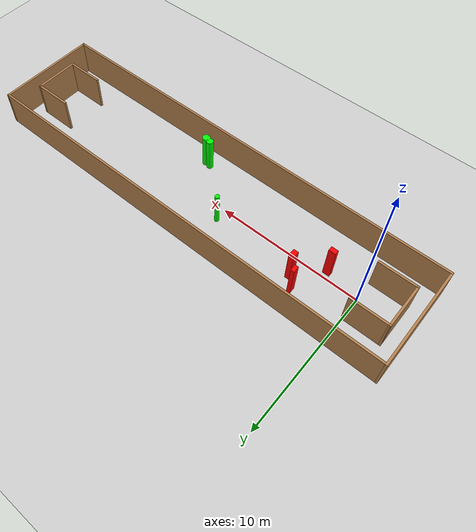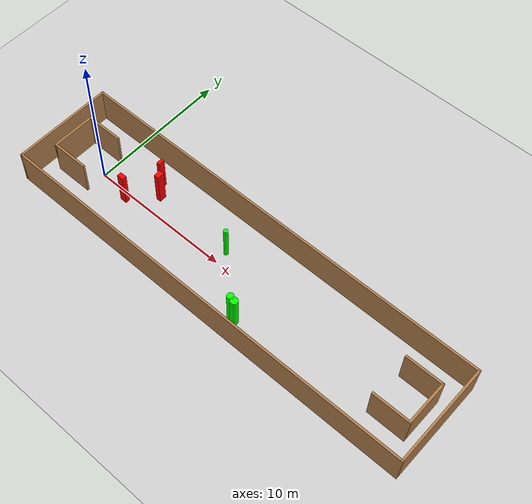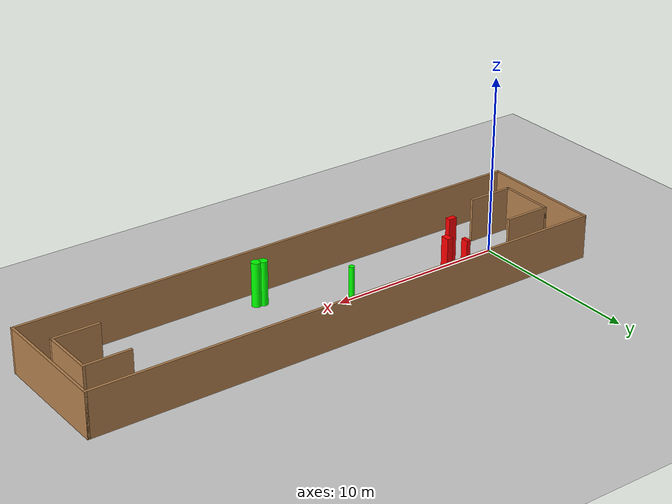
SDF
<sdf version="1.7">
 <world name="default">
  <light name="sun" type="directional">
   <pose>0 0 10 0 -0 0</pose>
   <diffuse>0.8 0.8 0.8 1</diffuse>
   <specular>0.2 0.2 0.2 1</specular>
   <attenuation>
    <range>1000</range>
    <constant>0.9</constant>
    <linear>0.01</linear>
    <quadratic>0.001</quadratic>
   </attenuation>
   <direction>-0.5 0.1 -0.9</direction>
   <spot><inner_angle>0</inner_angle><outer_angle>0</outer_angle><falloff>0</falloff></spot>
  </light>
  <model name="ground_plane">
   <static>1</static>
   <link name="link">
    <collision name="collision">
     <geometry><plane><normal>0 0 1</normal><size>100 100</size></plane></geometry>
     <surface>
      <contact><collide_bitmask>65535</collide_bitmask></contact>
      <friction><ode><mu>100</mu><mu2>50</mu2></ode></friction>
     </surface>
    </collision>
    <visual name="visual">
     <cast_shadows>0</cast_shadows>
     <geometry><plane><normal>0 0 1</normal><size>100 100</size></plane></geometry>
     <material>
      <script><uri>file://media/materials/scripts/gazebo.material</uri><name>Gazebo/Grey</name></script>
     </material>
    </visual>
   </link>
  </model>
  <gravity>0 0 -9.8</gravity>
  <magnetic_field>6e-06 2.3e-05 -4.2e-05</magnetic_field>
  <atmosphere type="adiabatic"/>
  <physics type="ode">
   <max_step_size>0.001</max_step_size>
   <real_time_factor>1</real_time_factor>
   <real_time_update_rate>1000</real_time_update_rate>
  </physics>
  <scene><ambient>0.4 0.4 0.4 1</ambient><background>0.7 0.7 0.7 1</background><shadows>1</shadows></scene>
  <spherical_coordinates>
   <surface_model>EARTH_WGS84</surface_model>
   <latitude_deg>0</latitude_deg>
   <longitude_deg>0</longitude_deg>
   <elevation>0</elevation>
   <heading_deg>0</heading_deg>
  </spherical_coordinates>
  <model name="my_base_walls">
   <link name="Wall_0">
    <collision name="Wall_0_Collision">
     <geometry><box><size>7.15 0.15 2.5</size></box></geometry>
     <pose>0 0 1.25 0 -0 0</pose>
    </collision>
    <visual name="Wall_0_Visual">
     <pose>0 0 1.25 0 -0 0</pose>
     <geometry><box><size>7.15 0.15 2.5</size></box></geometry>
     <material>
      <script><uri>file://media/materials/scripts/gazebo.material</uri><name>Gazebo/Wood</name></script>
      <ambient>1 1 1 1</ambient>
     </material>
     <meta><layer>0</layer></meta>
    </visual>
    <pose>-15 0 0 0 -0 1.5708</pose>
   </link>
   <link name="Wall_10">
    <collision name="Wall_10_Collision">
     <geometry><box><size>2.65 0.15 2.5</size></box></geometry>
     <pose>0 0 1.25 0 -0 0</pose>
    </collision>
    <visual name="Wall_10_Visual">
     <pose>0 0 1.25 0 -0 0</pose>
     <geometry><box><size>2.65 0.15 2.5</size></box></geometry>
     <material>
      <script><uri>file://media/materials/scripts/gazebo.material</uri><name>Gazebo/Wood</name></script>
      <ambient>1 1 1 1</ambient>
     </material>
     <meta><layer>0</layer></meta>
    </visual>
    <pose>-12.75 -1.5 0 0 -0 0</pose>
   </link>
   <link name="Wall_12">
    <collision name="Wall_12_Collision">
     <geometry><box><size>2.65 0.15 2.5</size></box></geometry>
     <pose>0 0 1.25 0 -0 0</pose>
    </collision>
    <visual name="Wall_12_Visual">
     <pose>0 0 1.25 0 -0 0</pose>
     <geometry><box><size>2.65 0.15 2.5</size></box></geometry>
     <material>
      <script><uri>file://media/materials/scripts/gazebo.material</uri><name>Gazebo/Wood</name></script>
      <ambient>1 1 1 1</ambient>
     </material>
     <meta><layer>0</layer></meta>
    </visual>
    <pose>-12.75 1.5 0 0 -0 0</pose>
   </link>
   <link name="Wall_14">
    <collision name="Wall_14_Collision">
     <geometry><box><size>3.15 0.15 2.5</size></box></geometry>
     <pose>0 0 1.25 0 -0 0</pose>
    </collision>
    <visual name="Wall_14_Visual">
     <pose>0 0 1.25 0 -0 0</pose>
     <geometry><box><size>3.15 0.15 2.5</size></box></geometry>
     <material>
      <script><uri>file://media/materials/scripts/gazebo.material</uri><name>Gazebo/Wood</name></script>
      <ambient>1 1 1 1</ambient>
     </material>
     <meta><layer>0</layer></meta>
    </visual>
    <pose>14 0 0 0 -0 -1.5708</pose>
   </link>
   <link name="Wall_15">
    <collision name="Wall_15_Collision">
     <geometry><box><size>2.65 0.15 2.5</size></box></geometry>
     <pose>0 0 1.25 0 -0 0</pose>
    </collision>
    <visual name="Wall_15_Visual">
     <pose>0 0 1.25 0 -0 0</pose>
     <geometry><box><size>2.65 0.15 2.5</size></box></geometry>
     <material>
      <script><uri>file://media/materials/scripts/gazebo.material</uri><name>Gazebo/Wood</name></script>
      <ambient>1 1 1 1</ambient>
     </material>
     <meta><layer>0</layer></meta>
    </visual>
    <pose>12.75 -1.5 0 0 -0 3.14159</pose>
   </link>
   <link name="Wall_17">
    <collision name="Wall_17_Collision">
     <geometry><box><size>2.65 0.15 2.5</size></box></geometry>
     <pose>0 0 1.25 0 -0 0</pose>
    </collision>
    <visual name="Wall_17_Visual">
     <pose>0 0 1.25 0 -0 0</pose>
     <geometry><box><size>2.65 0.15 2.5</size></box></geometry>
     <material>
      <script><uri>file://media/materials/scripts/gazebo.material</uri><name>Gazebo/Wood</name></script>
      <ambient>1 1 1 1</ambient>
     </material>
     <meta><layer>0</layer></meta>
    </visual>
    <pose>12.75 1.5 0 0 -0 3.14159</pose>
   </link>
   <link name="Wall_2">
    <collision name="Wall_2_Collision">
     <geometry><box><size>30.15 0.15 2.5</size></box></geometry>
     <pose>0 0 1.25 0 -0 0</pose>
    </collision>
    <visual name="Wall_2_Visual">
     <pose>0 0 1.25 0 -0 0</pose>
     <geometry><box><size>30.15 0.15 2.5</size></box></geometry>
     <material>
      <script><uri>file://media/materials/scripts/gazebo.material</uri><name>Gazebo/Wood</name></script>
      <ambient>1 1 1 1</ambient>
     </material>
     <meta><layer>0</layer></meta>
    </visual>
    <pose>-0 -3.5 0 0 -0 0</pose>
   </link>
   <link name="Wall_4">
    <collision name="Wall_4_Collision">
     <geometry><box><size>30.15 0.15 2.5</size></box></geometry>
     <pose>0 0 1.25 0 -0 0</pose>
    </collision>
    <visual name="Wall_4_Visual">
     <pose>0 0 1.25 0 -0 0</pose>
     <geometry><box><size>30.15 0.15 2.5</size></box></geometry>
     <material>
      <script><uri>file://media/materials/scripts/gazebo.material</uri><name>Gazebo/Wood</name></script>
      <ambient>1 1 1 1</ambient>
     </material>
     <meta><layer>0</layer></meta>
    </visual>
    <pose>-0 3.5 0 0 -0 0</pose>
   </link>
   <link name="Wall_6">
    <collision name="Wall_6_Collision">
     <geometry><box><size>7.15 0.15 2.5</size></box></geometry>
     <pose>0 0 1.25 0 -0 0</pose>
    </collision>
    <visual name="Wall_6_Visual">
     <pose>0 0 1.25 0 -0 0</pose>
     <geometry><box><size>7.15 0.15 2.5</size></box></geometry>
     <material>
      <script><uri>file://media/materials/scripts/gazebo.material</uri><name>Gazebo/Wood</name></script>
      <ambient>1 1 1 1</ambient>
     </material>
     <meta><layer>0</layer></meta>
    </visual>
    <pose>15 0 0 0 -0 -1.5708</pose>
   </link>
   <link name="Wall_9">
    <collision name="Wall_9_Collision">
     <geometry><box><size>3.15 0.15 2.5</size></box></geometry>
     <pose>0 0 1.25 0 -0 0</pose>
    </collision>
    <visual name="Wall_9_Visual">
     <pose>0 0 1.25 0 -0 0</pose>
     <geometry><box><size>3.15 0.15 2.5</size></box></geometry>
     <material>
      <script><uri>file://media/materials/scripts/gazebo.material</uri><name>Gazebo/Wood</name></script>
      <ambient>1 1 1 1</ambient>
     </material>
     <meta><layer>0</layer></meta>
    </visual>
    <pose>-14 0 0 0 -0 -1.5708</pose>
   </link>
   <static>1</static>
   <pose>11.5 0 0 0 -0 0</pose>
  </model>
  <model name="cylinder1">
   <static>1</static>
   <link name="link">
    <inertial>
     <mass>1</mass>
     <inertia><ixx>0.5</ixx><ixy>0</ixy><ixz>0</ixz><iyy>0.5</iyy><iyz>0</iyz><izz>1</izz></inertia>
    </inertial>
    <collision name="collision">
     <geometry><cylinder><radius>0.15452568634584693</radius><length>2.5</length></cylinder></geometry>
    </collision>
    <visual name="visual">
     <geometry><cylinder><radius>0.15452568634584693</radius><length>2.5</length></cylinder></geometry>
     <material>
      <ambient>0 1 0 1</ambient>
      <diffuse>0 1 0 1</diffuse>
      <specular>0.1 0.1 0.1 1</specular>
      <emissive>0 0 0 0</emissive>
     </material>
    </visual>
   </link>
   <pose>9.931069658517753 0.9021809087310606 1.25 0 0 0</pose>
  </model>
  <model name="cylinder2">
   <static>1</static>
   <link name="link">
    <inertial>
     <mass>1</mass>
     <inertia><ixx>0.5</ixx><ixy>0</ixy><ixz>0</ixz><iyy>0.5</iyy><iyz>0</iyz><izz>1</izz></inertia>
    </inertial>
    <collision name="collision">
     <geometry><cylinder><radius>0.25950777305430506</radius><length>2.5</length></cylinder></geometry>
    </collision>
    <visual name="visual">
     <geometry><cylinder><radius>0.25950777305430506</radius><length>2.5</length></cylinder></geometry>
     <material>
      <ambient>0 1 0 1</ambient>
      <diffuse>0 1 0 1</diffuse>
      <specular>0.1 0.1 0.1 1</specular>
      <emissive>0 0 0 0</emissive>
     </material>
    </visual>
   </link>
   <pose>13.549088382666445 -2.324129553484499 1.25 0 0 0</pose>
  </model>
  <model name="cylinder3">
   <static>1</static>
   <link name="link">
    <inertial>
     <mass>1</mass>
     <inertia><ixx>0.5</ixx><ixy>0</ixy><ixz>0</ixz><iyy>0.5</iyy><iyz>0</iyz><izz>1</izz></inertia>
    </inertial>
    <collision name="collision">
     <geometry><cylinder><radius>0.23438290111408014</radius><length>2.5</length></cylinder></geometry>
    </collision>
    <visual name="visual">
     <geometry><cylinder><radius>0.23438290111408014</radius><length>2.5</length></cylinder></geometry>
     <material>
      <ambient>0 1 0 1</ambient>
      <diffuse>0 1 0 1</diffuse>
      <specular>0.1 0.1 0.1 1</specular>
      <emissive>0 0 0 0</emissive>
     </material>
    </visual>
   </link>
   <pose>13.174058603155352 -2.2342584091863507 1.25 0 0 0</pose>
  </model>
  <model name="box1">
   <static>1</static>
   <link name="link">
    <inertial>
     <mass>1</mass>
     <inertia><ixx>0.083</ixx><ixy>0</ixy><ixz>0</ixz><iyy>0.083</iyy><iyz>0</iyz><izz>0.083</izz></inertia>
    </inertial>
    <collision name="collision">
     <geometry><box><size>0.34827409088991157 0.5009705987121087 2.5</size></box></geometry>
    </collision>
    <visual name="visual">
     <geometry><box><size>0.34827409088991157 0.5009705987121087 2.5</size></box></geometry>
     <material>
      <ambient>1 0 0 1</ambient>
      <diffuse>1 0 0 1</diffuse>
      <specular>0.1 0.1 0.1 1</specular>
      <emissive>0 0 0 0</emissive>
     </material>
    </visual>
    <sensor name="my_contact" type="contact">
     <contact><collision>box_collision</collision><topic>__default_topic__</topic></contact>
    </sensor>
   </link>
   <pose>3.99309422919983 1.206493145888886 1.25 0 0 0</pose>
  </model>
  <model name="box2">
   <static>1</static>
   <link name="link">
    <inertial>
     <mass>1</mass>
     <inertia><ixx>0.083</ixx><ixy>0</ixy><ixz>0</ixz><iyy>0.083</iyy><iyz>0</iyz><izz>0.083</izz></inertia>
    </inertial>
    <collision name="collision">
     <geometry><box><size>0.24067933039433995 0.44201416914832187 2.5</size></box></geometry>
    </collision>
    <visual name="visual">
     <geometry><box><size>0.24067933039433995 0.44201416914832187 2.5</size></box></geometry>
     <material>
      <ambient>1 0 0 1</ambient>
      <diffuse>1 0 0 1</diffuse>
      <specular>0.1 0.1 0.1 1</specular>
      <emissive>0 0 0 0</emissive>
     </material>
    </visual>
    <sensor name="my_contact" type="contact">
     <contact><collision>box_collision</collision><topic>__default_topic__</topic></contact>
    </sensor>
   </link>
   <pose>3.3715267098914676 1.9705450887433313 1.25 0 0 0</pose>
  </model>
  <model name="box3">
   <static>1</static>
   <link name="link">
    <inertial>
     <mass>1</mass>
     <inertia><ixx>0.083</ixx><ixy>0</ixy><ixz>0</ixz><iyy>0.083</iyy><iyz>0</iyz><izz>0.083</izz></inertia>
    </inertial>
    <collision name="collision">
     <geometry><box><size>0.48222428590700883 0.3172016372895804 2.5</size></box></geometry>
    </collision>
    <visual name="visual">
     <geometry><box><size>0.48222428590700883 0.3172016372895804 2.5</size></box></geometry>
     <material>
      <ambient>1 0 0 1</ambient>
      <diffuse>1 0 0 1</diffuse>
      <specular>0.1 0.1 0.1 1</specular>
      <emissive>0 0 0 0</emissive>
     </material>
    </visual>
    <sensor name="my_contact" type="contact">
     <contact><collision>box_collision</collision><topic>__default_topic__</topic></contact>
    </sensor>
   </link>
   <pose>2.3762082388298893 -0.4406079695996019 1.25 0 0 0</pose>
  </model>
 </world>
</sdf>
